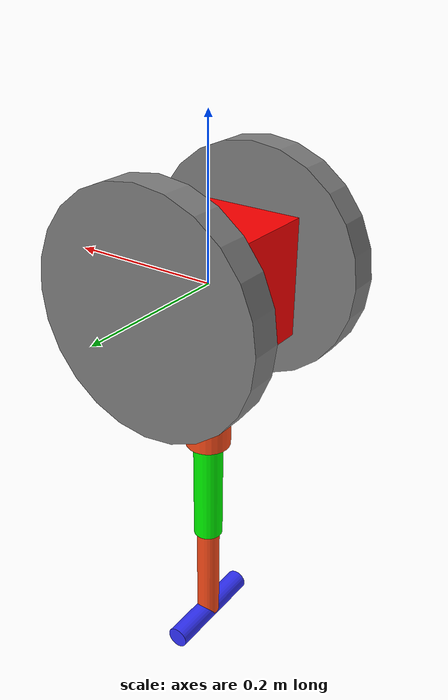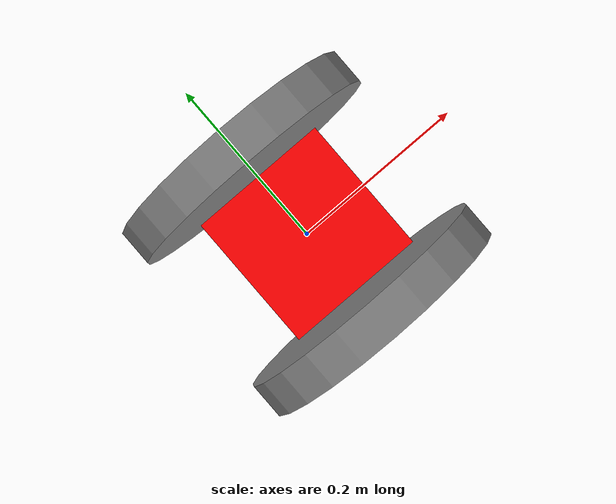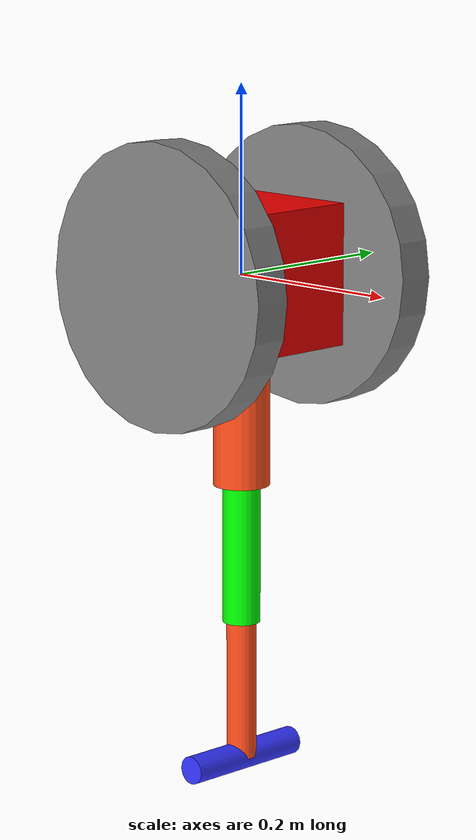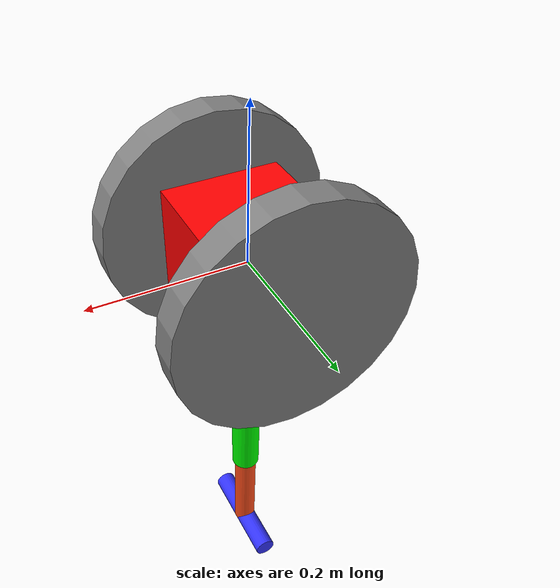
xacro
<?xml version='1.0' encoding='UTF-8'?>
<robot xmlns:xacro="http://www.ros.org/wiki/xacro" name="monoped_2d">

    <xacro:include filename="robot_material.xacro"/>
    <xacro:include filename="robot_params.xacro"/>
    <xacro:include filename="inertial_macros.xacro"/>
    <xacro:include filename="gazebo_full.xacro" />

    <link name="body_link">
        <visual>
            <origin xyz="0 0 0"/>
            <geometry>
                <box size="${b_x} ${b_y} ${b_z}"/>
            </geometry>
            <material name="red"/>
        </visual>
        <collision>
            <origin xyz="0 0 0"/>
            <geometry>
                <box size="${b_x} ${b_y} ${b_z}"/>
            </geometry>
        </collision>
        <xacro:inertial_box mass="${mass_body}" x="${b_x}" y="${b_y}" z="${b_z}">
            <origin xyz="0 0 0" rpy="0 0 0"/>
        </xacro:inertial_box>
    </link>

    <joint name="body_to_rw_left" type="continuous">
        <origin xyz="0 ${b_y/2 + rw_l/2 + 0.01} 0" rpy="${-pi/2} 0 0"/>
        <parent link="body_link"/>
        <child link="rw_left_link"/>
        <axis xyz="0 0 1"/>
        <limit effort="${rw_effort_limit}" velocity="${rw_velocity_limit}"/>
        <dynamics damping="${rw_damping}" friction="${rw_friction}"/>
    </joint>

    <link name="rw_left_link">
        <visual>
            <origin xyz="0 0 0" rpy="0 0 0"/>
            <geometry>
                <cylinder radius="${rw_r}" length="${rw_l}"/>
            </geometry>
            <material name="grey"/>
        </visual>
        <collision>
            <origin xyz="0 0 0" rpy="0 0 0"/>
            <geometry>
                <cylinder radius="${rw_r}" length="${rw_l}"/>
            </geometry>
        </collision>
        <inertial>
            <origin xyz="0 0 0" rpy="0 0 0"/>
            <mass value="${mass_rw}"/>
            <inertia ixx="${(1/12) * mass_rw * (3*rw_r*rw_r + rw_l*rw_l)}" ixy="0.0" ixz="0.0"
                     iyy="${(1/12) * mass_rw * (3*rw_r*rw_r + rw_l*rw_l)}" iyz="0.0"
                     izz="${(1/2) * mass_rw * rw_r*rw_r}"/>
        </inertial>
    </link>

    <joint name="body_to_rw_right" type="continuous">
        <origin xyz="0 ${-b_y/2 - rw_l/2 - 0.01} 0" rpy="${pi/2} 0 0"/>
        <parent link="body_link"/>
        <child link="rw_right_link"/>
        <axis xyz="0 0 1"/>
        <limit effort="${rw_effort_limit}" velocity="${rw_velocity_limit}"/>
        <dynamics damping="${rw_damping}" friction="${rw_friction}"/>
    </joint>

    <link name="rw_right_link">
        <visual>
            <origin xyz="0 0 0" rpy="0 0 0"/>
            <geometry>
                <cylinder radius="${rw_r}" length="${rw_l}"/>
            </geometry>
            <material name="grey"/>
        </visual>
        <collision>
            <origin xyz="0 0 0" rpy="0 0 0"/>
            <geometry>
                <cylinder radius="${rw_r}" length="${rw_l}"/>
            </geometry>
        </collision>
        <inertial>
            <origin xyz="0 0 0" rpy="0 0 0"/>
            <mass value="${mass_rw}"/>
            <inertia ixx="${(1/12) * mass_rw * (3*rw_r*rw_r + rw_l*rw_l)}" ixy="0.0" ixz="0.0"
                     iyy="${(1/12) * mass_rw * (3*rw_r*rw_r + rw_l*rw_l)}" iyz="0.0"
                     izz="${(1/2) * mass_rw * rw_r*rw_r}"/>
        </inertial>
    </link>

    <joint name="body_to_thigh" type="fixed">
        <origin xyz="0 0 ${b2thigh}" rpy="0 0 0"/>
        <parent link="body_link"/>
        <child link="thigh_link"/>
        <axis xyz="0 1 0"/>
    </joint>

    <link name="thigh_link">
        <visual>
            <origin xyz="0 0 ${-thigh_l/2}" rpy="0 0 0"/>
            <geometry>
                <cylinder radius="${thigh_r}" length="${thigh_l}"/>
            </geometry>
            <material name="orange"/>
        </visual>
        <collision>
            <origin xyz="0 0 ${-thigh_l/2}" rpy="0 0 0"/>
            <geometry>
                <cylinder radius="${thigh_r}" length="${thigh_l}"/>
            </geometry>
        </collision>
        <xacro:inertial_cylinder mass="${mass_thigh}" radius="${thigh_r}" length="${thigh_l}">
            <origin xyz="0 0 ${-thigh_l/2}" rpy="0 0 0"/>
        </xacro:inertial_cylinder>
    </link>

    <!-- ACTIVE Spring Joint (effort controlled) -->
    <joint name="thigh_to_shank" type="prismatic">
        <origin xyz="0 0 ${-thigh_l}" rpy="0 0 0"/>
        <parent link="thigh_link"/>
        <child link="shank_link"/>
        <axis xyz="0 0 1"/>
        <limit lower="${spring_lower_limit}" upper="${spring_upper_limit}"
               effort="${spring_effort_limit}" velocity="${spring_velocity_limit}"/>
        <dynamics damping="${spring_damping}" friction="${spring_friction}"/>
    </joint>

    <link name="shank_link">
        <visual>
            <origin xyz="0 0 ${-shank_l/2}" rpy="0 0 0"/>
            <geometry>
                <cylinder radius="${shank_r}" length="${shank_l}"/>
            </geometry>
            <material name="green"/>
        </visual>
        <collision>
            <origin xyz="0 0 ${-shank_l/2}" rpy="0 0 0"/>
            <geometry>
                <cylinder radius="${shank_r}" length="${shank_l}"/>
            </geometry>
        </collision>
        <xacro:inertial_cylinder mass="${mass_shank}" radius="${shank_r}" length="${shank_l}">
            <origin xyz="0 0 ${-shank_l/2}" rpy="0 0 0"/>
        </xacro:inertial_cylinder>
    </link>

    <!-- PASSIVE Spring Joint (Gazebo spring only, no control) -->
    <joint name="shank_to_passive_shank" type="prismatic">
        <origin xyz="0 0 ${-shank_l}" rpy="0 0 0"/>
        <parent link="shank_link"/>
        <child link="passive_shank_link"/>
        <axis xyz="0 0 1"/>
        <limit lower="${spring_lower_limit}" upper="${spring_upper_limit}"
               effort="1000" velocity="1000"/>
        <dynamics damping="${spring_damping}" friction="${spring_friction}"/>
    </joint>

    <link name="passive_shank_link">
        <visual>
            <origin xyz="0 0 ${-shank_l/2}" rpy="0 0 0"/>
            <geometry>
                <cylinder radius="${shank_r*0.8}" length="${shank_l}"/>
            </geometry>
            <material name="orange"/>
        </visual>
        <collision>
            <origin xyz="0 0 ${-shank_l/2}" rpy="0 0 0"/>
            <geometry>
                <cylinder radius="${shank_r*0.8}" length="${shank_l}"/>
            </geometry>
        </collision>
        <xacro:inertial_cylinder mass="${mass_shank}" radius="${shank_r}" length="${shank_l}">
            <origin xyz="0 0 ${-shank_l/2}" rpy="0 0 0"/>
        </xacro:inertial_cylinder>
    </link>

    <joint name="passive_shank_to_foot" type="fixed">
        <origin xyz="0 0 ${-shank_l}" rpy="${pi/2} 0 0"/>
        <parent link="passive_shank_link"/>
        <child link="foot_link"/>
    </joint>

    <link name="foot_link">
        <visual>
            <origin xyz="0 0 0" rpy="0 0 0"/>
            <geometry>
                <cylinder radius="${foot_r}" length="${foot_l}"/>
            </geometry>
            <material name="blue"/>
        </visual>
        <collision name="foot_collision">
            <origin xyz="0 0 0"/>
            <geometry>
                <cylinder radius="${foot_r}" length="${foot_l}"/>
            </geometry>
        </collision>
        <xacro:inertial_cylinder mass="${mass_foot}" radius="${foot_r}" length="${foot_l}">
            <origin xyz="0 0 0" rpy="0 0 0"/>
        </xacro:inertial_cylinder>
    </link>

    <gazebo reference="thigh_to_shank">
        <springReference>0.0</springReference>
        <springStiffness>${leg_stiffness}</springStiffness>
    </gazebo>

    <gazebo reference="shank_to_passive_shank">
        <springReference>0.0</springReference>
        <springStiffness>${leg_stiffness}</springStiffness>
    </gazebo>

</robot>

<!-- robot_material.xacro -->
<robot xmlns:xacro="http://www.ros.org/wiki/xacro" >

    <material name="yellow">
        <color rgba="1 1 0 0.8"/>
    </material>

    <material name="orange">
        <color rgba="1 0.3 0.1 1"/>
    </material>

    <material name="blue">
        <color rgba="0.2 0.2 1 1"/>
    </material>

    <material name="red">
        <color rgba="1 0 0 1"/>
    </material>

    <material name="black">
        <color rgba="0 0 0 0.8"/>
    </material>

    <material name="grey">
        <color rgba="0.5 0.5 0.5 1"/>
    </material>

    <material name="white">
        <color rgba="1 1 1 1"/>
    </material>

    <material name="green">
        <color rgba="0 1 0 1"/>
    </material>

</robot>

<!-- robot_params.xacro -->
<robot xmlns:xacro="http://www.ros.org/wiki/xacro" >

    <!-- TD-SLIP 2D Running Robot Parameters -->
    <!-- Based on: Truax et al. 2024 - Optimizing Design and Control of Running Robots -->
    <!-- Abstracted as Torque Driven Spring Loaded Inverted Pendulum (TD-SLIP) -->

    <!-- ============== BODY PARAMETERS ============== -->
    <!-- body/box (main body mass) -->
    <xacro:property name="b_x" value="0.15"/>
    <xacro:property name="b_y" value="0.15"/>
    <xacro:property name="b_z" value="0.15"/>

    <!-- ============== LEG PARAMETERS ============== -->
    <!-- thigh/cylinder (upper leg segment) -->
    <xacro:property name="thigh_r" value="0.03"/>
    <xacro:property name="thigh_l" value="0.15"/>

    <!-- shank/cylinder (lower leg segment with spring) -->
    <xacro:property name="shank_r" value="0.02"/>
    <xacro:property name="shank_l" value="0.15"/>

    <!-- ============== FOOT PARAMETERS ============== -->
    <!-- foot/cylinder (constrains motion to XZ plane - forward/backward only) -->
    <xacro:property name="foot_r" value="0.015"/>
    <xacro:property name="foot_l" value="0.15"/>

    <!-- ============== REACTION WHEEL PARAMETERS ============== -->
    <!-- Reaction wheels on both sides of body for attitude control -->
    <!-- Balance: high inertia for control authority, but not too heavy -->
    <!-- I_wheel = 0.5 * m * r^2 = 0.5 * 1.0 * 0.15^2 ≈ 0.01125 kg.m^2 per wheel -->
    <xacro:property name="rw_r" value="0.15"/>
    <xacro:property name="rw_l" value="0.04"/>
    <xacro:property name="mass_rw" value="1.0"/>
    <!-- Offset from body center (Y-axis) -->
    <xacro:property name="rw_y_offset" value="${b_y/2 + rw_l/2 + 0.01}"/>

    <!-- ============== JOINT OFFSETS ============== -->
    <!-- body to thigh joint (z offset) -->
    <xacro:property name="b2thigh" value="${-b_z/2}"/>
    <!-- thigh to shank joint (z offset along thigh) -->
    <xacro:property name="thigh2shank" value="${-thigh_l/2}"/>
    <!-- shank to foot joint (z offset along shank) -->
    <xacro:property name="shank2foot" value="${-shank_l/2}"/>

    <!-- ============== MASS PARAMETERS ============== -->
    <!-- From TD-SLIP model: concentrated body mass with light leg -->
    <xacro:property name="mass_body" value="0.1"/>
    <xacro:property name="mass_thigh" value="0.001"/>
    <xacro:property name="mass_shank" value="0.001"/>
    <xacro:property name="mass_foot" value="0.1"/>

    <!-- ============== JOINT DYNAMICS ============== -->
    <!-- TD-SLIP with damping for Phase 2 -->
    <xacro:property name="spring_damping" value="0.3"/>
    <xacro:property name="spring_friction" value="0.0"/>

    <!-- ============== SPRING PARAMETERS ============== -->
    <!-- Leg spring stiffness (ks) -->
    <xacro:property name="leg_stiffness" value="10000"/>
    <!-- Spring rest length (L0) is defined by link lengths -->
    <!-- L0 = thigh_l + shank_l = 0.30 m -->

    <!-- ============== SPRING JOINT LIMITS ============== -->
    <!-- Spring compression limits (meters) -->
    <xacro:property name="spring_lower_limit" value="0.0"/>
    <xacro:property name="spring_upper_limit" value="0.1"/>
    <xacro:property name="spring_effort_limit" value="1000"/>
    <xacro:property name="spring_velocity_limit" value="1000"/>

    <!-- ============== REACTION WHEEL JOINT ============== -->
    <!-- Continuous rotation for reaction wheels -->
    <xacro:property name="rw_damping" value="0.9"/>
    <xacro:property name="rw_friction" value="0.2"/>
    <xacro:property name="rw_effort_limit" value="10000"/>
    <xacro:property name="rw_velocity_limit" value="100000"/>

</robot>

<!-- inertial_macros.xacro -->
<robot xmlns:xacro="http://www.ros.org/wiki/xacro" >

    <!-- Specify some standard inertial calculations https://en.wikipedia.org/wiki/List_of_moments_of_inertia -->
    <!-- These make use of xacro's mathematical functionality -->

    <xacro:macro name="inertial_box" params="mass x y z *origin">
        <inertial>
            <xacro:insert_block name="origin"/>
            <mass value="${mass}" />
            <inertia ixx="${(1/12) * mass * (y*y+z*z)}" ixy="0.0" ixz="0.0"
                    iyy="${(1/12) * mass * (x*x+z*z)}" iyz="0.0"
                    izz="${(1/12) * mass * (x*x+y*y)}" />
        </inertial>
    </xacro:macro>

    <xacro:macro name="inertial_cylinder" params="mass length radius *origin">
        <inertial>
            <xacro:insert_block name="origin"/>
            <mass value="${mass}" />
            <inertia ixx="${(1/12) * mass * (3*radius*radius + length*length)}" ixy="0.0" ixz="0.0"
                    iyy="${(1/12) * mass * (3*radius*radius + length*length)}" iyz="0.0"
                    izz="${(1/2) * mass * (radius*radius)}" />
        </inertial>
    </xacro:macro>

    <xacro:macro name="inertial_sphere" params="mass radius *origin">
        <inertial>
            <xacro:insert_block name="origin"/>
            <mass value="${mass}" />
            <inertia ixx="${(2/5) * mass * (radius*radius)}" ixy="0.0" ixz="0.0"
                    iyy="${(2/5) * mass * (radius*radius)}" iyz="0.0"
                    izz="${(2/5) * mass * (radius*radius)}" />
        </inertial>
    </xacro:macro>

</robot>
